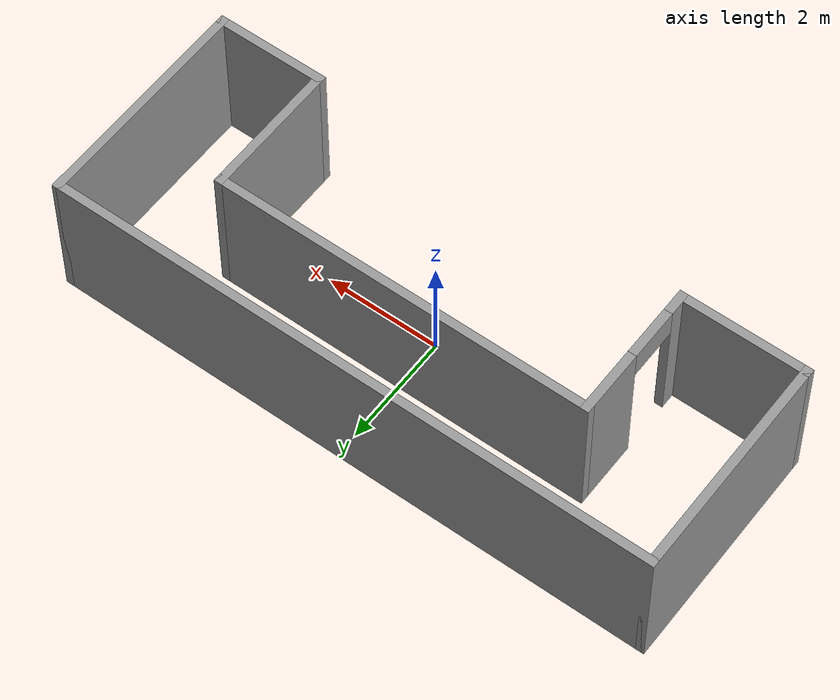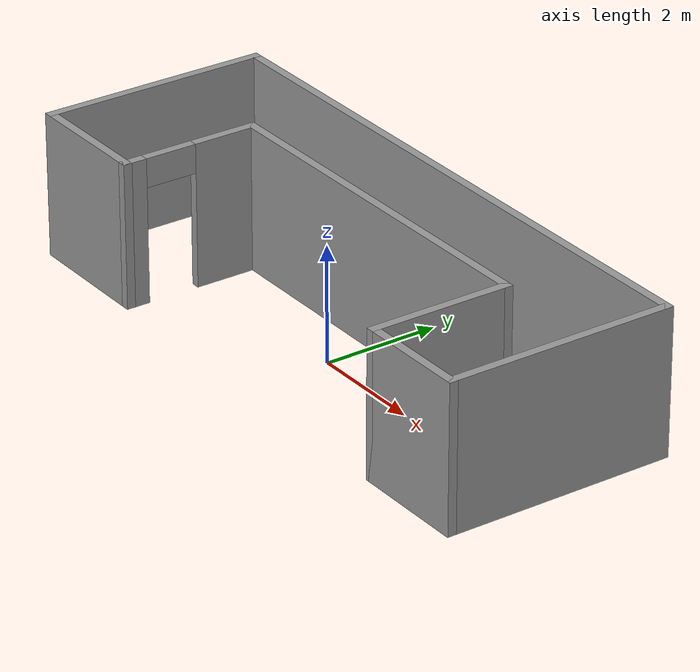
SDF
<?xml version='1.0'?>
<sdf version='1.6'>
  <model name='new_c'>
    <pose frame=''>-0.14 0.435 0 0 -0 0</pose>
    <link name='Wall_0'>
      <collision name='Wall_0_Collision'>
        <geometry>
          <box>
            <size>4 0.15 2.5</size>
          </box>
        </geometry>
        <pose frame=''>0 0 1.25 0 -0 0</pose>
      </collision>
      <visual name='Wall_0_Visual'>
        <pose frame=''>0 0 1.25 0 -0 0</pose>
        <geometry>
          <box>
            <size>4 0.15 2.5</size>
          </box>
        </geometry>
        <material>
          <script>
            <uri>file://media/materials/scripts/gazebo.material</uri>
            <name>Gazebo/Grey</name>
          </script>
          <ambient>1 1 1 1</ambient>
        </material>
      </visual>
      <pose frame=''>-5.3 0 0 0 -0 1.5708</pose>
    </link>
    <link name='Wall_1'>
      <collision name='Wall_1_Collision'>
        <geometry>
          <box>
            <size>10.75 0.15 2.5</size>
          </box>
        </geometry>
        <pose frame=''>0 0 1.25 0 -0 0</pose>
      </collision>
      <visual name='Wall_1_Visual'>
        <pose frame=''>0 0 1.25 0 -0 0</pose>
        <geometry>
          <box>
            <size>10.75 0.15 2.5</size>
          </box>
        </geometry>
        <material>
          <script>
            <uri>file://media/materials/scripts/gazebo.material</uri>
            <name>Gazebo/Grey</name>
          </script>
          <ambient>1 1 1 1</ambient>
        </material>
      </visual>
      <pose frame=''>0 1.925 0 0 -0 0</pose>
    </link>
    <link name='Wall_2'>
      <collision name='Wall_2_Collision'>
        <geometry>
          <box>
            <size>4 0.15 2.5</size>
          </box>
        </geometry>
        <pose frame=''>0 0 1.25 0 -0 0</pose>
      </collision>
      <visual name='Wall_2_Visual'>
        <pose frame=''>0 0 1.25 0 -0 0</pose>
        <geometry>
          <box>
            <size>4 0.15 2.5</size>
          </box>
        </geometry>
        <material>
          <script>
            <uri>file://media/materials/scripts/gazebo.material</uri>
            <name>Gazebo/Grey</name>
          </script>
          <ambient>1 1 1 1</ambient>
        </material>
      </visual>
      <pose frame=''>5.3 0 0 0 0 -1.5708</pose>
    </link>
    <link name='Wall_3'>
      <collision name='Wall_3_Collision'>
        <geometry>
          <box>
            <size>2 0.15 2.5</size>
          </box>
        </geometry>
        <pose frame=''>0 0 1.25 0 -0 0</pose>
      </collision>
      <visual name='Wall_3_Visual'>
        <pose frame=''>0 0 1.25 0 -0 0</pose>
        <geometry>
          <box>
            <size>2 0.15 2.5</size>
          </box>
        </geometry>
        <material>
          <script>
            <uri>file://media/materials/scripts/gazebo.material</uri>
            <name>Gazebo/Grey</name>
          </script>
          <ambient>1 1 1 1</ambient>
        </material>
      </visual>
      <pose frame=''>4.375 -1.925 0 0 -0 3.14159</pose>
    </link>
    <link name='Wall_4'>
      <collision name='Wall_4_Collision'>
        <geometry>
          <box>
            <size>2.5 0.15 2.5</size>
          </box>
        </geometry>
        <pose frame=''>0 0 1.25 0 -0 0</pose>
      </collision>
      <visual name='Wall_4_Visual'>
        <pose frame=''>0 0 1.25 0 -0 0</pose>
        <geometry>
          <box>
            <size>2.5 0.15 2.5</size>
          </box>
        </geometry>
        <material>
          <script>
            <uri>file://media/materials/scripts/gazebo.material</uri>
            <name>Gazebo/Grey</name>
          </script>
          <ambient>1 1 1 1</ambient>
        </material>
      </visual>
      <pose frame=''>3.45 -0.75 0 0 -0 1.5708</pose>
    </link>
    <link name='Wall_5'>
      <collision name='Wall_5_Collision'>
        <geometry>
          <box>
            <size>6.75 0.15 2.5</size>
          </box>
        </geometry>
        <pose frame=''>0 0 1.25 0 -0 0</pose>
      </collision>
      <visual name='Wall_5_Visual'>
        <pose frame=''>0 0 1.25 0 -0 0</pose>
        <geometry>
          <box>
            <size>6.75 0.15 2.5</size>
          </box>
        </geometry>
        <material>
          <script>
            <uri>file://media/materials/scripts/gazebo.material</uri>
            <name>Gazebo/Grey</name>
          </script>
          <ambient>1 1 1 1</ambient>
        </material>
      </visual>
      <pose frame=''>0.15 0.425 0 0 -0 3.14159</pose>
    </link>
    <link name='Wall_6'>
      <pose frame=''>-3.15 -0.75 0 0 0 -1.5708</pose>
      <visual name='Wall_6_Visual_0'>
        <pose frame=''>-0.657263 0 1.25 0 -0 0</pose>
        <geometry>
          <box>
            <size>1.18547 0.15 2.5</size>
          </box>
        </geometry>
        <material>
          <script>
            <uri>file://media/materials/scripts/gazebo.material</uri>
            <name>Gazebo/Grey</name>
          </script>
          <ambient>1 1 1 1</ambient>
        </material>
      </visual>
      <collision name='Wall_6_Collision_0'>
        <geometry>
          <box>
            <size>1.18547 0.15 2.5</size>
          </box>
        </geometry>
        <pose frame=''>-0.657263 0 1.25 0 -0 0</pose>
      </collision>
      <visual name='Wall_6_Visual_1'>
        <pose frame=''>1.04274 0 1.25 0 -0 0</pose>
        <geometry>
          <box>
            <size>0.414526 0.15 2.5</size>
          </box>
        </geometry>
        <material>
          <script>
            <uri>file://media/materials/scripts/gazebo.material</uri>
            <name>Gazebo/Grey</name>
          </script>
          <ambient>1 1 1 1</ambient>
        </material>
      </visual>
      <collision name='Wall_6_Collision_1'>
        <geometry>
          <box>
            <size>0.414526 0.15 2.5</size>
          </box>
        </geometry>
        <pose frame=''>1.04274 0 1.25 0 -0 0</pose>
      </collision>
      <visual name='Wall_6_Visual_2'>
        <pose frame=''>0.385474 0 2.25 0 -0 0</pose>
        <geometry>
          <box>
            <size>0.9 0.15 0.5</size>
          </box>
        </geometry>
        <material>
          <script>
            <uri>file://media/materials/scripts/gazebo.material</uri>
            <name>Gazebo/Grey</name>
          </script>
          <ambient>1 1 1 1</ambient>
        </material>
      </visual>
      <collision name='Wall_6_Collision_2'>
        <geometry>
          <box>
            <size>0.9 0.15 0.5</size>
          </box>
        </geometry>
        <pose frame=''>0.385474 0 2.25 0 -0 0</pose>
      </collision>
    </link>
    <link name='Wall_7'>
      <collision name='Wall_7_Collision'>
        <geometry>
          <box>
            <size>2.3 0.15 2.5</size>
          </box>
        </geometry>
        <pose frame=''>0 0 1.25 0 -0 0</pose>
      </collision>
      <visual name='Wall_7_Visual'>
        <pose frame=''>0 0 1.25 0 -0 0</pose>
        <geometry>
          <box>
            <size>2.3 0.15 2.5</size>
          </box>
        </geometry>
        <material>
          <script>
            <uri>file://media/materials/scripts/gazebo.material</uri>
            <name>Gazebo/Grey</name>
          </script>
          <ambient>1 1 1 1</ambient>
        </material>
      </visual>
      <pose frame=''>-4.225 -1.925 0 0 0 -3.14159</pose>
    </link>
    <static>1</static>
  </model>
</sdf>
